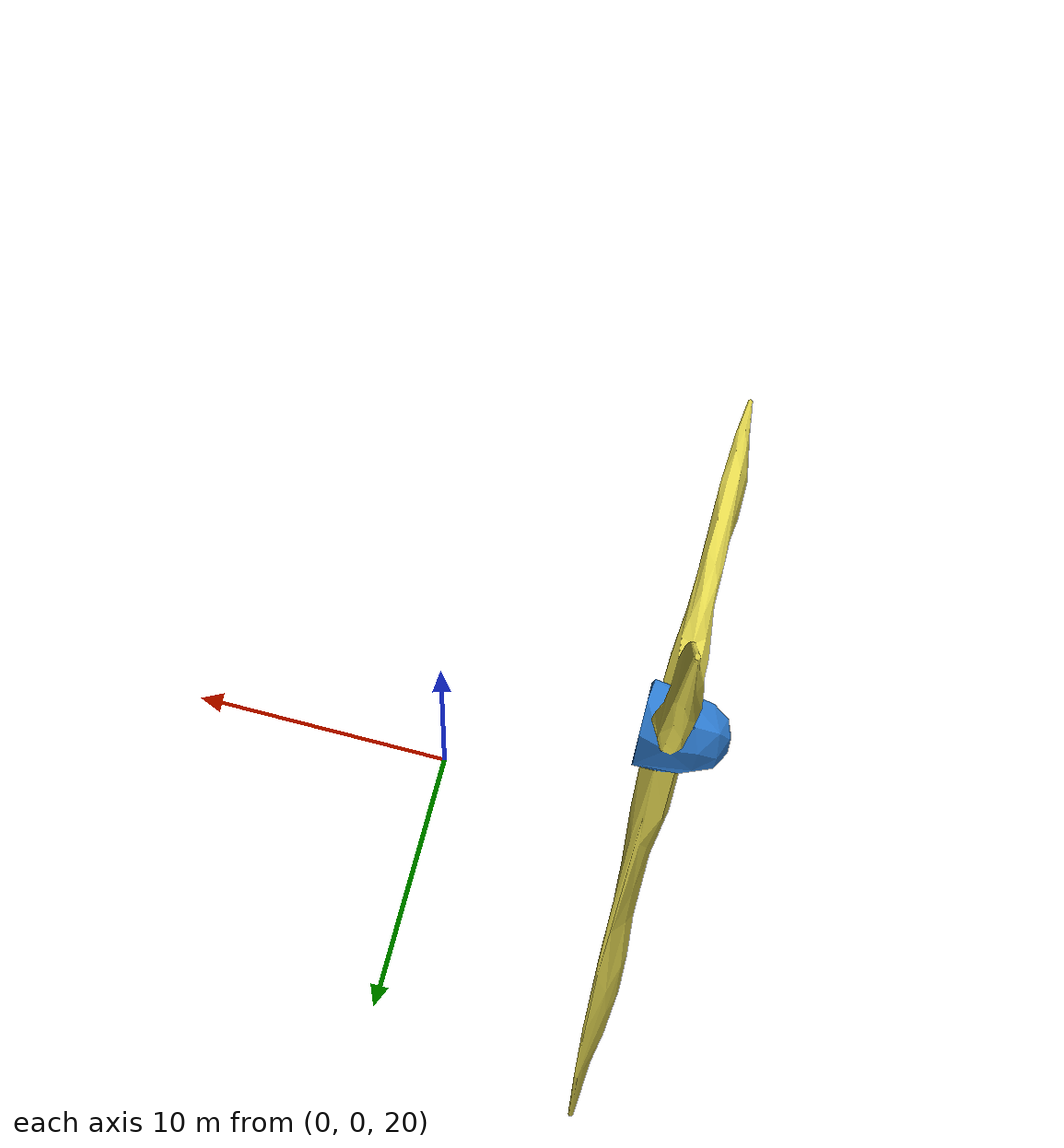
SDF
<?xml version="1.0"?>
<sdf version="1.5">
  <model name="aquabot_windturbine_rotor">
    <static>true</static>
    <link name="link">
      <visual name="visual">
        <pose>-3.55 0.0 30.0 0 0 0 </pose>
        <geometry>
          <mesh>
            <uri>mesh/rotor.dae</uri>
          </mesh>
        </geometry>
      </visual>
      <collision name="collision">
        <pose>-4.55 0 30 0 1.57 0</pose>
        <geometry>
          <cylinder>
            <radius>16</radius>
            <length>0.9</length>
          </cylinder>
        </geometry>
      </collision>
    </link>
  </model>
</sdf>
